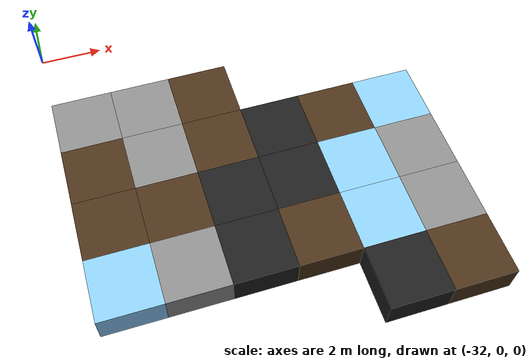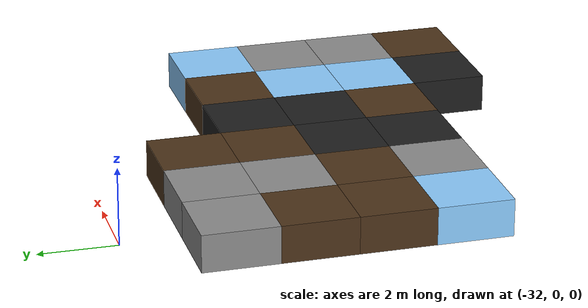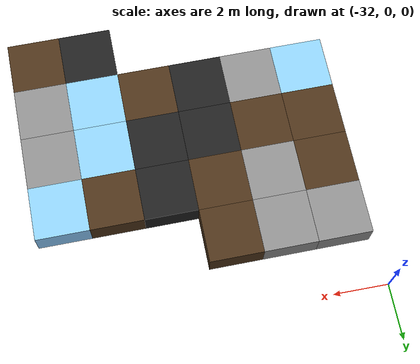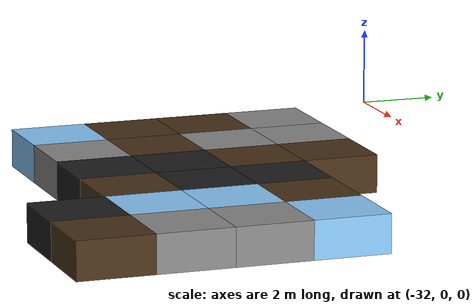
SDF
<sdf version="1.5">
 <world name="squares_example">
  <model name="tile_4_10">
   <static>true</static>
   <pose>-23.000 -11.000 -0.500 0 0 0</pose>
   <link name="link">
    <collision name="col">
     <geometry><box><size>2.0 2.0 1.0</size></box></geometry>
     <surface>
      <friction>
       <ode><mu>0.4</mu><mu2>0.15</mu2><fdir1>1 0 0</fdir1><slip1>0.0</slip1><slip2>0.0</slip2></ode>
       <torsional>
        <coefficient>0.03</coefficient>
        <use_patch_radius>false</use_patch_radius>
        <surface_radius>0.12</surface_radius>
        <ode><slip>0.0</slip></ode>
       </torsional>
      </friction>
      <bounce><restitution_coefficient>0.0</restitution_coefficient><threshold>0.1</threshold></bounce>
      <contact>
       <ode><kp>1000000000.0</kp><kd>1000000.0</kd><max_vel>0.01</max_vel><min_depth>0.0</min_depth></ode>
      </contact>
     </surface>
    </collision>
    <visual name="visual">
     <geometry><box><size>2.0 2.0 1.0</size></box></geometry>
     <material>
      <diffuse>0.12 0.12 0.12 1</diffuse>
      <ambient>0 0 0 0</ambient>
      <specular>0 0 0 1</specular>
      <emissive>0 0 0 1</emissive>
     </material>
    </visual>
   </link>
  </model>
  <model name="tile_5_10">
   <static>true</static>
   <pose>-21.000 -11.000 -0.500 0 0 0</pose>
   <link name="link">
    <collision name="col">
     <geometry><box><size>2.0 2.0 1.0</size></box></geometry>
     <surface>
      <friction>
       <ode><mu>0.6</mu><mu2>0.4</mu2><fdir1>1 0 0</fdir1><slip1>0.08</slip1><slip2>0.08</slip2></ode>
       <torsional>
        <coefficient>0.03</coefficient>
        <use_patch_radius>false</use_patch_radius>
        <surface_radius>0.12</surface_radius>
        <ode><slip>0.0</slip></ode>
       </torsional>
      </friction>
      <bounce><restitution_coefficient>0.0</restitution_coefficient><threshold>0.1</threshold></bounce>
      <contact>
       <ode><kp>1000000.0</kp><kd>10000.0</kd><max_vel>0.01</max_vel><min_depth>0.0</min_depth></ode>
      </contact>
     </surface>
    </collision>
    <visual name="visual">
     <geometry><box><size>2.0 2.0 1.0</size></box></geometry>
     <material>
      <diffuse>0.30 0.20 0.10 1</diffuse>
      <ambient>0 0 0 0</ambient>
      <specular>0 0 0 1</specular>
      <emissive>0 0 0 1</emissive>
     </material>
    </visual>
   </link>
  </model>
  <model name="tile_0_11">
   <static>true</static>
   <pose>-31.000 -9.000 -0.500 0 0 0</pose>
   <link name="link">
    <collision name="col">
     <geometry><box><size>2.0 2.0 1.0</size></box></geometry>
     <surface>
      <friction>
       <ode><mu>0.03</mu><mu2>0.02</mu2><fdir1>1 0 0</fdir1><slip1>0.03</slip1><slip2>0.03</slip2></ode>
       <torsional>
        <coefficient>0.005</coefficient>
        <use_patch_radius>false</use_patch_radius>
        <surface_radius>0.12</surface_radius>
        <ode><slip>0.01</slip></ode>
       </torsional>
      </friction>
      <bounce><restitution_coefficient>0.0</restitution_coefficient><threshold>0.1</threshold></bounce>
      <contact>
       <ode><kp>10000000.0</kp><kd>1000.0</kd><max_vel>0.01</max_vel><min_depth>0.0</min_depth></ode>
      </contact>
     </surface>
    </collision>
    <visual name="visual">
     <geometry><box><size>2.0 2.0 1.0</size></box></geometry>
     <material>
      <diffuse>0.55 0.80 1.00 1</diffuse>
      <ambient>0 0 0 0</ambient>
      <specular>0 0 0 1</specular>
      <emissive>0 0 0 1</emissive>
     </material>
    </visual>
   </link>
  </model>
  <model name="tile_1_11">
   <static>true</static>
   <pose>-29.000 -9.000 -0.500 0 0 0</pose>
   <link name="link">
    <collision name="col">
     <geometry><box><size>2.0 2.0 1.0</size></box></geometry>
     <surface>
      <friction>
       <ode><mu>0.8</mu><mu2>0.3</mu2><fdir1>1 0 0</fdir1><slip1>0.0</slip1><slip2>0.0</slip2></ode>
       <torsional>
        <coefficient>0.03</coefficient>
        <use_patch_radius>false</use_patch_radius>
        <surface_radius>0.12</surface_radius>
        <ode><slip>0.0</slip></ode>
       </torsional>
      </friction>
      <bounce><restitution_coefficient>0.0</restitution_coefficient><threshold>0.1</threshold></bounce>
      <contact>
       <ode><kp>10000000000.0</kp><kd>10000000.0</kd><max_vel>0.01</max_vel><min_depth>0.0</min_depth></ode>
      </contact>
     </surface>
    </collision>
    <visual name="visual">
     <geometry><box><size>2.0 2.0 1.0</size></box></geometry>
     <material>
      <diffuse>0.55 0.55 0.55 1</diffuse>
      <ambient>0 0 0 0</ambient>
      <specular>0 0 0 1</specular>
      <emissive>0 0 0 1</emissive>
     </material>
    </visual>
   </link>
  </model>
  <model name="tile_2_11">
   <static>true</static>
   <pose>-27.000 -9.000 -0.500 0 0 0</pose>
   <link name="link">
    <collision name="col">
     <geometry><box><size>2.0 2.0 1.0</size></box></geometry>
     <surface>
      <friction>
       <ode><mu>0.4</mu><mu2>0.15</mu2><fdir1>1 0 0</fdir1><slip1>0.0</slip1><slip2>0.0</slip2></ode>
       <torsional>
        <coefficient>0.03</coefficient>
        <use_patch_radius>false</use_patch_radius>
        <surface_radius>0.12</surface_radius>
        <ode><slip>0.0</slip></ode>
       </torsional>
      </friction>
      <bounce><restitution_coefficient>0.0</restitution_coefficient><threshold>0.1</threshold></bounce>
      <contact>
       <ode><kp>1000000000.0</kp><kd>1000000.0</kd><max_vel>0.01</max_vel><min_depth>0.0</min_depth></ode>
      </contact>
     </surface>
    </collision>
    <visual name="visual">
     <geometry><box><size>2.0 2.0 1.0</size></box></geometry>
     <material>
      <diffuse>0.12 0.12 0.12 1</diffuse>
      <ambient>0 0 0 0</ambient>
      <specular>0 0 0 1</specular>
      <emissive>0 0 0 1</emissive>
     </material>
    </visual>
   </link>
  </model>
  <model name="tile_3_11">
   <static>true</static>
   <pose>-25.000 -9.000 -0.500 0 0 0</pose>
   <link name="link">
    <collision name="col">
     <geometry><box><size>2.0 2.0 1.0</size></box></geometry>
     <surface>
      <friction>
       <ode><mu>0.6</mu><mu2>0.4</mu2><fdir1>1 0 0</fdir1><slip1>0.08</slip1><slip2>0.08</slip2></ode>
       <torsional>
        <coefficient>0.03</coefficient>
        <use_patch_radius>false</use_patch_radius>
        <surface_radius>0.12</surface_radius>
        <ode><slip>0.0</slip></ode>
       </torsional>
      </friction>
      <bounce><restitution_coefficient>0.0</restitution_coefficient><threshold>0.1</threshold></bounce>
      <contact>
       <ode><kp>1000000.0</kp><kd>10000.0</kd><max_vel>0.01</max_vel><min_depth>0.0</min_depth></ode>
      </contact>
     </surface>
    </collision>
    <visual name="visual">
     <geometry><box><size>2.0 2.0 1.0</size></box></geometry>
     <material>
      <diffuse>0.30 0.20 0.10 1</diffuse>
      <ambient>0 0 0 0</ambient>
      <specular>0 0 0 1</specular>
      <emissive>0 0 0 1</emissive>
     </material>
    </visual>
   </link>
  </model>
  <model name="tile_4_11">
   <static>true</static>
   <pose>-23.000 -9.000 -0.500 0 0 0</pose>
   <link name="link">
    <collision name="col">
     <geometry><box><size>2.0 2.0 1.0</size></box></geometry>
     <surface>
      <friction>
       <ode><mu>0.03</mu><mu2>0.02</mu2><fdir1>1 0 0</fdir1><slip1>0.03</slip1><slip2>0.03</slip2></ode>
       <torsional>
        <coefficient>0.005</coefficient>
        <use_patch_radius>false</use_patch_radius>
        <surface_radius>0.12</surface_radius>
        <ode><slip>0.01</slip></ode>
       </torsional>
      </friction>
      <bounce><restitution_coefficient>0.0</restitution_coefficient><threshold>0.1</threshold></bounce>
      <contact>
       <ode><kp>10000000.0</kp><kd>1000.0</kd><max_vel>0.01</max_vel><min_depth>0.0</min_depth></ode>
      </contact>
     </surface>
    </collision>
    <visual name="visual">
     <geometry><box><size>2.0 2.0 1.0</size></box></geometry>
     <material>
      <diffuse>0.55 0.80 1.00 1</diffuse>
      <ambient>0 0 0 0</ambient>
      <specular>0 0 0 1</specular>
      <emissive>0 0 0 1</emissive>
     </material>
    </visual>
   </link>
  </model>
  <model name="tile_5_11">
   <static>true</static>
   <pose>-21.000 -9.000 -0.500 0 0 0</pose>
   <link name="link">
    <collision name="col">
     <geometry><box><size>2.0 2.0 1.0</size></box></geometry>
     <surface>
      <friction>
       <ode><mu>0.8</mu><mu2>0.3</mu2><fdir1>1 0 0</fdir1><slip1>0.0</slip1><slip2>0.0</slip2></ode>
       <torsional>
        <coefficient>0.03</coefficient>
        <use_patch_radius>false</use_patch_radius>
        <surface_radius>0.12</surface_radius>
        <ode><slip>0.0</slip></ode>
       </torsional>
      </friction>
      <bounce><restitution_coefficient>0.0</restitution_coefficient><threshold>0.1</threshold></bounce>
      <contact>
       <ode><kp>10000000000.0</kp><kd>10000000.0</kd><max_vel>0.01</max_vel><min_depth>0.0</min_depth></ode>
      </contact>
     </surface>
    </collision>
    <visual name="visual">
     <geometry><box><size>2.0 2.0 1.0</size></box></geometry>
     <material>
      <diffuse>0.55 0.55 0.55 1</diffuse>
      <ambient>0 0 0 0</ambient>
      <specular>0 0 0 1</specular>
      <emissive>0 0 0 1</emissive>
     </material>
    </visual>
   </link>
  </model>
  <model name="tile_0_12">
   <static>true</static>
   <pose>-31.000 -7.000 -0.500 0 0 0</pose>
   <link name="link">
    <collision name="col">
     <geometry><box><size>2.0 2.0 1.0</size></box></geometry>
     <surface>
      <friction>
       <ode><mu>0.6</mu><mu2>0.4</mu2><fdir1>1 0 0</fdir1><slip1>0.08</slip1><slip2>0.08</slip2></ode>
       <torsional>
        <coefficient>0.03</coefficient>
        <use_patch_radius>false</use_patch_radius>
        <surface_radius>0.12</surface_radius>
        <ode><slip>0.0</slip></ode>
       </torsional>
      </friction>
      <bounce><restitution_coefficient>0.0</restitution_coefficient><threshold>0.1</threshold></bounce>
      <contact>
       <ode><kp>1000000.0</kp><kd>10000.0</kd><max_vel>0.01</max_vel><min_depth>0.0</min_depth></ode>
      </contact>
     </surface>
    </collision>
    <visual name="visual">
     <geometry><box><size>2.0 2.0 1.0</size></box></geometry>
     <material>
      <diffuse>0.30 0.20 0.10 1</diffuse>
      <ambient>0 0 0 0</ambient>
      <specular>0 0 0 1</specular>
      <emissive>0 0 0 1</emissive>
     </material>
    </visual>
   </link>
  </model>
  <model name="tile_1_12">
   <static>true</static>
   <pose>-29.000 -7.000 -0.500 0 0 0</pose>
   <link name="link">
    <collision name="col">
     <geometry><box><size>2.0 2.0 1.0</size></box></geometry>
     <surface>
      <friction>
       <ode><mu>0.6</mu><mu2>0.4</mu2><fdir1>1 0 0</fdir1><slip1>0.08</slip1><slip2>0.08</slip2></ode>
       <torsional>
        <coefficient>0.03</coefficient>
        <use_patch_radius>false</use_patch_radius>
        <surface_radius>0.12</surface_radius>
        <ode><slip>0.0</slip></ode>
       </torsional>
      </friction>
      <bounce><restitution_coefficient>0.0</restitution_coefficient><threshold>0.1</threshold></bounce>
      <contact>
       <ode><kp>1000000.0</kp><kd>10000.0</kd><max_vel>0.01</max_vel><min_depth>0.0</min_depth></ode>
      </contact>
     </surface>
    </collision>
    <visual name="visual">
     <geometry><box><size>2.0 2.0 1.0</size></box></geometry>
     <material>
      <diffuse>0.30 0.20 0.10 1</diffuse>
      <ambient>0 0 0 0</ambient>
      <specular>0 0 0 1</specular>
      <emissive>0 0 0 1</emissive>
     </material>
    </visual>
   </link>
  </model>
  <model name="tile_2_12">
   <static>true</static>
   <pose>-27.000 -7.000 -0.500 0 0 0</pose>
   <link name="link">
    <collision name="col">
     <geometry><box><size>2.0 2.0 1.0</size></box></geometry>
     <surface>
      <friction>
       <ode><mu>0.4</mu><mu2>0.15</mu2><fdir1>1 0 0</fdir1><slip1>0.0</slip1><slip2>0.0</slip2></ode>
       <torsional>
        <coefficient>0.03</coefficient>
        <use_patch_radius>false</use_patch_radius>
        <surface_radius>0.12</surface_radius>
        <ode><slip>0.0</slip></ode>
       </torsional>
      </friction>
      <bounce><restitution_coefficient>0.0</restitution_coefficient><threshold>0.1</threshold></bounce>
      <contact>
       <ode><kp>1000000000.0</kp><kd>1000000.0</kd><max_vel>0.01</max_vel><min_depth>0.0</min_depth></ode>
      </contact>
     </surface>
    </collision>
    <visual name="visual">
     <geometry><box><size>2.0 2.0 1.0</size></box></geometry>
     <material>
      <diffuse>0.12 0.12 0.12 1</diffuse>
      <ambient>0 0 0 0</ambient>
      <specular>0 0 0 1</specular>
      <emissive>0 0 0 1</emissive>
     </material>
    </visual>
   </link>
  </model>
  <model name="tile_3_12">
   <static>true</static>
   <pose>-25.000 -7.000 -0.500 0 0 0</pose>
   <link name="link">
    <collision name="col">
     <geometry><box><size>2.0 2.0 1.0</size></box></geometry>
     <surface>
      <friction>
       <ode><mu>0.4</mu><mu2>0.15</mu2><fdir1>1 0 0</fdir1><slip1>0.0</slip1><slip2>0.0</slip2></ode>
       <torsional>
        <coefficient>0.03</coefficient>
        <use_patch_radius>false</use_patch_radius>
        <surface_radius>0.12</surface_radius>
        <ode><slip>0.0</slip></ode>
       </torsional>
      </friction>
      <bounce><restitution_coefficient>0.0</restitution_coefficient><threshold>0.1</threshold></bounce>
      <contact>
       <ode><kp>1000000000.0</kp><kd>1000000.0</kd><max_vel>0.01</max_vel><min_depth>0.0</min_depth></ode>
      </contact>
     </surface>
    </collision>
    <visual name="visual">
     <geometry><box><size>2.0 2.0 1.0</size></box></geometry>
     <material>
      <diffuse>0.12 0.12 0.12 1</diffuse>
      <ambient>0 0 0 0</ambient>
      <specular>0 0 0 1</specular>
      <emissive>0 0 0 1</emissive>
     </material>
    </visual>
   </link>
  </model>
  <model name="tile_4_12">
   <static>true</static>
   <pose>-23.000 -7.000 -0.500 0 0 0</pose>
   <link name="link">
    <collision name="col">
     <geometry><box><size>2.0 2.0 1.0</size></box></geometry>
     <surface>
      <friction>
       <ode><mu>0.03</mu><mu2>0.02</mu2><fdir1>1 0 0</fdir1><slip1>0.03</slip1><slip2>0.03</slip2></ode>
       <torsional>
        <coefficient>0.005</coefficient>
        <use_patch_radius>false</use_patch_radius>
        <surface_radius>0.12</surface_radius>
        <ode><slip>0.01</slip></ode>
       </torsional>
      </friction>
      <bounce><restitution_coefficient>0.0</restitution_coefficient><threshold>0.1</threshold></bounce>
      <contact>
       <ode><kp>10000000.0</kp><kd>1000.0</kd><max_vel>0.01</max_vel><min_depth>0.0</min_depth></ode>
      </contact>
     </surface>
    </collision>
    <visual name="visual">
     <geometry><box><size>2.0 2.0 1.0</size></box></geometry>
     <material>
      <diffuse>0.55 0.80 1.00 1</diffuse>
      <ambient>0 0 0 0</ambient>
      <specular>0 0 0 1</specular>
      <emissive>0 0 0 1</emissive>
     </material>
    </visual>
   </link>
  </model>
  <model name="tile_5_12">
   <static>true</static>
   <pose>-21.000 -7.000 -0.500 0 0 0</pose>
   <link name="link">
    <collision name="col">
     <geometry><box><size>2.0 2.0 1.0</size></box></geometry>
     <surface>
      <friction>
       <ode><mu>0.8</mu><mu2>0.3</mu2><fdir1>1 0 0</fdir1><slip1>0.0</slip1><slip2>0.0</slip2></ode>
       <torsional>
        <coefficient>0.03</coefficient>
        <use_patch_radius>false</use_patch_radius>
        <surface_radius>0.12</surface_radius>
        <ode><slip>0.0</slip></ode>
       </torsional>
      </friction>
      <bounce><restitution_coefficient>0.0</restitution_coefficient><threshold>0.1</threshold></bounce>
      <contact>
       <ode><kp>10000000000.0</kp><kd>10000000.0</kd><max_vel>0.01</max_vel><min_depth>0.0</min_depth></ode>
      </contact>
     </surface>
    </collision>
    <visual name="visual">
     <geometry><box><size>2.0 2.0 1.0</size></box></geometry>
     <material>
      <diffuse>0.55 0.55 0.55 1</diffuse>
      <ambient>0 0 0 0</ambient>
      <specular>0 0 0 1</specular>
      <emissive>0 0 0 1</emissive>
     </material>
    </visual>
   </link>
  </model>
  <model name="tile_0_13">
   <static>true</static>
   <pose>-31.000 -5.000 -0.500 0 0 0</pose>
   <link name="link">
    <collision name="col">
     <geometry><box><size>2.0 2.0 1.0</size></box></geometry>
     <surface>
      <friction>
       <ode><mu>0.6</mu><mu2>0.4</mu2><fdir1>1 0 0</fdir1><slip1>0.08</slip1><slip2>0.08</slip2></ode>
       <torsional>
        <coefficient>0.03</coefficient>
        <use_patch_radius>false</use_patch_radius>
        <surface_radius>0.12</surface_radius>
        <ode><slip>0.0</slip></ode>
       </torsional>
      </friction>
      <bounce><restitution_coefficient>0.0</restitution_coefficient><threshold>0.1</threshold></bounce>
      <contact>
       <ode><kp>1000000.0</kp><kd>10000.0</kd><max_vel>0.01</max_vel><min_depth>0.0</min_depth></ode>
      </contact>
     </surface>
    </collision>
    <visual name="visual">
     <geometry><box><size>2.0 2.0 1.0</size></box></geometry>
     <material>
      <diffuse>0.30 0.20 0.10 1</diffuse>
      <ambient>0 0 0 0</ambient>
      <specular>0 0 0 1</specular>
      <emissive>0 0 0 1</emissive>
     </material>
    </visual>
   </link>
  </model>
  <model name="tile_1_13">
   <static>true</static>
   <pose>-29.000 -5.000 -0.500 0 0 0</pose>
   <link name="link">
    <collision name="col">
     <geometry><box><size>2.0 2.0 1.0</size></box></geometry>
     <surface>
      <friction>
       <ode><mu>0.8</mu><mu2>0.3</mu2><fdir1>1 0 0</fdir1><slip1>0.0</slip1><slip2>0.0</slip2></ode>
       <torsional>
        <coefficient>0.03</coefficient>
        <use_patch_radius>false</use_patch_radius>
        <surface_radius>0.12</surface_radius>
        <ode><slip>0.0</slip></ode>
       </torsional>
      </friction>
      <bounce><restitution_coefficient>0.0</restitution_coefficient><threshold>0.1</threshold></bounce>
      <contact>
       <ode><kp>10000000000.0</kp><kd>10000000.0</kd><max_vel>0.01</max_vel><min_depth>0.0</min_depth></ode>
      </contact>
     </surface>
    </collision>
    <visual name="visual">
     <geometry><box><size>2.0 2.0 1.0</size></box></geometry>
     <material>
      <diffuse>0.55 0.55 0.55 1</diffuse>
      <ambient>0 0 0 0</ambient>
      <specular>0 0 0 1</specular>
      <emissive>0 0 0 1</emissive>
     </material>
    </visual>
   </link>
  </model>
  <model name="tile_2_13">
   <static>true</static>
   <pose>-27.000 -5.000 -0.500 0 0 0</pose>
   <link name="link">
    <collision name="col">
     <geometry><box><size>2.0 2.0 1.0</size></box></geometry>
     <surface>
      <friction>
       <ode><mu>0.6</mu><mu2>0.4</mu2><fdir1>1 0 0</fdir1><slip1>0.08</slip1><slip2>0.08</slip2></ode>
       <torsional>
        <coefficient>0.03</coefficient>
        <use_patch_radius>false</use_patch_radius>
        <surface_radius>0.12</surface_radius>
        <ode><slip>0.0</slip></ode>
       </torsional>
      </friction>
      <bounce><restitution_coefficient>0.0</restitution_coefficient><threshold>0.1</threshold></bounce>
      <contact>
       <ode><kp>1000000.0</kp><kd>10000.0</kd><max_vel>0.01</max_vel><min_depth>0.0</min_depth></ode>
      </contact>
     </surface>
    </collision>
    <visual name="visual">
     <geometry><box><size>2.0 2.0 1.0</size></box></geometry>
     <material>
      <diffuse>0.30 0.20 0.10 1</diffuse>
      <ambient>0 0 0 0</ambient>
      <specular>0 0 0 1</specular>
      <emissive>0 0 0 1</emissive>
     </material>
    </visual>
   </link>
  </model>
  <model name="tile_3_13">
   <static>true</static>
   <pose>-25.000 -5.000 -0.500 0 0 0</pose>
   <link name="link">
    <collision name="col">
     <geometry><box><size>2.0 2.0 1.0</size></box></geometry>
     <surface>
      <friction>
       <ode><mu>0.4</mu><mu2>0.15</mu2><fdir1>1 0 0</fdir1><slip1>0.0</slip1><slip2>0.0</slip2></ode>
       <torsional>
        <coefficient>0.03</coefficient>
        <use_patch_radius>false</use_patch_radius>
        <surface_radius>0.12</surface_radius>
        <ode><slip>0.0</slip></ode>
       </torsional>
      </friction>
      <bounce><restitution_coefficient>0.0</restitution_coefficient><threshold>0.1</threshold></bounce>
      <contact>
       <ode><kp>1000000000.0</kp><kd>1000000.0</kd><max_vel>0.01</max_vel><min_depth>0.0</min_depth></ode>
      </contact>
     </surface>
    </collision>
    <visual name="visual">
     <geometry><box><size>2.0 2.0 1.0</size></box></geometry>
     <material>
      <diffuse>0.12 0.12 0.12 1</diffuse>
      <ambient>0 0 0 0</ambient>
      <specular>0 0 0 1</specular>
      <emissive>0 0 0 1</emissive>
     </material>
    </visual>
   </link>
  </model>
  <model name="tile_4_13">
   <static>true</static>
   <pose>-23.000 -5.000 -0.500 0 0 0</pose>
   <link name="link">
    <collision name="col">
     <geometry><box><size>2.0 2.0 1.0</size></box></geometry>
     <surface>
      <friction>
       <ode><mu>0.6</mu><mu2>0.4</mu2><fdir1>1 0 0</fdir1><slip1>0.08</slip1><slip2>0.08</slip2></ode>
       <torsional>
        <coefficient>0.03</coefficient>
        <use_patch_radius>false</use_patch_radius>
        <surface_radius>0.12</surface_radius>
        <ode><slip>0.0</slip></ode>
       </torsional>
      </friction>
      <bounce><restitution_coefficient>0.0</restitution_coefficient><threshold>0.1</threshold></bounce>
      <contact>
       <ode><kp>1000000.0</kp><kd>10000.0</kd><max_vel>0.01</max_vel><min_depth>0.0</min_depth></ode>
      </contact>
     </surface>
    </collision>
    <visual name="visual">
     <geometry><box><size>2.0 2.0 1.0</size></box></geometry>
     <material>
      <diffuse>0.30 0.20 0.10 1</diffuse>
      <ambient>0 0 0 0</ambient>
      <specular>0 0 0 1</specular>
      <emissive>0 0 0 1</emissive>
     </material>
    </visual>
   </link>
  </model>
  <model name="tile_5_13">
   <static>true</static>
   <pose>-21.000 -5.000 -0.500 0 0 0</pose>
   <link name="link">
    <collision name="col">
     <geometry><box><size>2.0 2.0 1.0</size></box></geometry>
     <surface>
      <friction>
       <ode><mu>0.03</mu><mu2>0.02</mu2><fdir1>1 0 0</fdir1><slip1>0.03</slip1><slip2>0.03</slip2></ode>
       <torsional>
        <coefficient>0.005</coefficient>
        <use_patch_radius>false</use_patch_radius>
        <surface_radius>0.12</surface_radius>
        <ode><slip>0.01</slip></ode>
       </torsional>
      </friction>
      <bounce><restitution_coefficient>0.0</restitution_coefficient><threshold>0.1</threshold></bounce>
      <contact>
       <ode><kp>10000000.0</kp><kd>1000.0</kd><max_vel>0.01</max_vel><min_depth>0.0</min_depth></ode>
      </contact>
     </surface>
    </collision>
    <visual name="visual">
     <geometry><box><size>2.0 2.0 1.0</size></box></geometry>
     <material>
      <diffuse>0.55 0.80 1.00 1</diffuse>
      <ambient>0 0 0 0</ambient>
      <specular>0 0 0 1</specular>
      <emissive>0 0 0 1</emissive>
     </material>
    </visual>
   </link>
  </model>
  <model name="tile_0_14">
   <static>true</static>
   <pose>-31.000 -3.000 -0.500 0 0 0</pose>
   <link name="link">
    <collision name="col">
     <geometry><box><size>2.0 2.0 1.0</size></box></geometry>
     <surface>
      <friction>
       <ode><mu>0.8</mu><mu2>0.3</mu2><fdir1>1 0 0</fdir1><slip1>0.0</slip1><slip2>0.0</slip2></ode>
       <torsional>
        <coefficient>0.03</coefficient>
        <use_patch_radius>false</use_patch_radius>
        <surface_radius>0.12</surface_radius>
        <ode><slip>0.0</slip></ode>
       </torsional>
      </friction>
      <bounce><restitution_coefficient>0.0</restitution_coefficient><threshold>0.1</threshold></bounce>
      <contact>
       <ode><kp>10000000000.0</kp><kd>10000000.0</kd><max_vel>0.01</max_vel><min_depth>0.0</min_depth></ode>
      </contact>
     </surface>
    </collision>
    <visual name="visual">
     <geometry><box><size>2.0 2.0 1.0</size></box></geometry>
     <material>
      <diffuse>0.55 0.55 0.55 1</diffuse>
      <ambient>0 0 0 0</ambient>
      <specular>0 0 0 1</specular>
      <emissive>0 0 0 1</emissive>
     </material>
    </visual>
   </link>
  </model>
  <model name="tile_1_14">
   <static>true</static>
   <pose>-29.000 -3.000 -0.500 0 0 0</pose>
   <link name="link">
    <collision name="col">
     <geometry><box><size>2.0 2.0 1.0</size></box></geometry>
     <surface>
      <friction>
       <ode><mu>0.8</mu><mu2>0.3</mu2><fdir1>1 0 0</fdir1><slip1>0.0</slip1><slip2>0.0</slip2></ode>
       <torsional>
        <coefficient>0.03</coefficient>
        <use_patch_radius>false</use_patch_radius>
        <surface_radius>0.12</surface_radius>
        <ode><slip>0.0</slip></ode>
       </torsional>
      </friction>
      <bounce><restitution_coefficient>0.0</restitution_coefficient><threshold>0.1</threshold></bounce>
      <contact>
       <ode><kp>10000000000.0</kp><kd>10000000.0</kd><max_vel>0.01</max_vel><min_depth>0.0</min_depth></ode>
      </contact>
     </surface>
    </collision>
    <visual name="visual">
     <geometry><box><size>2.0 2.0 1.0</size></box></geometry>
     <material>
      <diffuse>0.55 0.55 0.55 1</diffuse>
      <ambient>0 0 0 0</ambient>
      <specular>0 0 0 1</specular>
      <emissive>0 0 0 1</emissive>
     </material>
    </visual>
   </link>
  </model>
  <model name="tile_2_14">
   <static>true</static>
   <pose>-27.000 -3.000 -0.500 0 0 0</pose>
   <link name="link">
    <collision name="col">
     <geometry><box><size>2.0 2.0 1.0</size></box></geometry>
     <surface>
      <friction>
       <ode><mu>0.6</mu><mu2>0.4</mu2><fdir1>1 0 0</fdir1><slip1>0.08</slip1><slip2>0.08</slip2></ode>
       <torsional>
        <coefficient>0.03</coefficient>
        <use_patch_radius>false</use_patch_radius>
        <surface_radius>0.12</surface_radius>
        <ode><slip>0.0</slip></ode>
       </torsional>
      </friction>
      <bounce><restitution_coefficient>0.0</restitution_coefficient><threshold>0.1</threshold></bounce>
      <contact>
       <ode><kp>1000000.0</kp><kd>10000.0</kd><max_vel>0.01</max_vel><min_depth>0.0</min_depth></ode>
      </contact>
     </surface>
    </collision>
    <visual name="visual">
     <geometry><box><size>2.0 2.0 1.0</size></box></geometry>
     <material>
      <diffuse>0.30 0.20 0.10 1</diffuse>
      <ambient>0 0 0 0</ambient>
      <specular>0 0 0 1</specular>
      <emissive>0 0 0 1</emissive>
     </material>
    </visual>
   </link>
  </model>
 </world>
</sdf>
